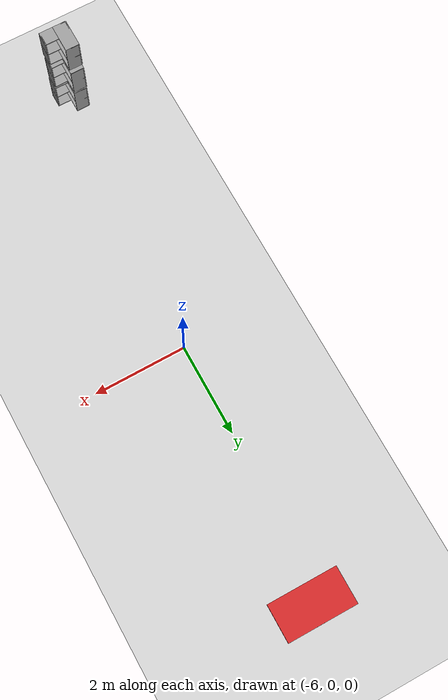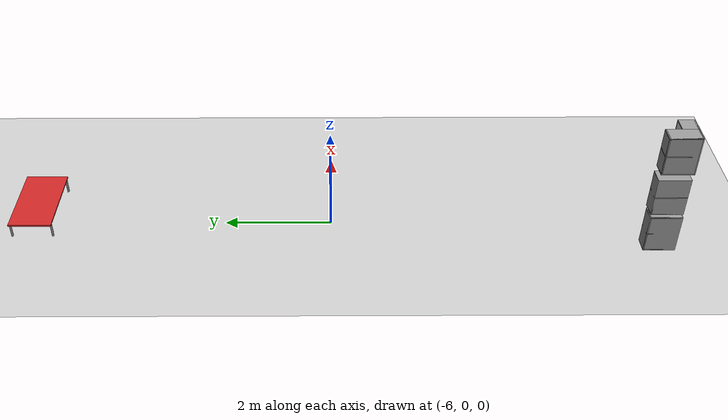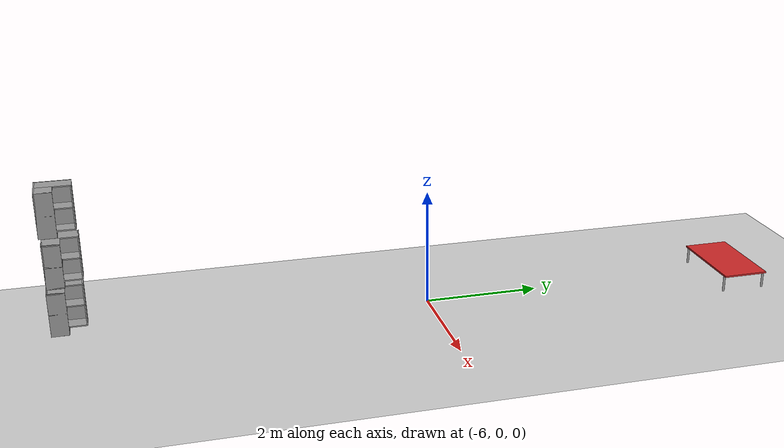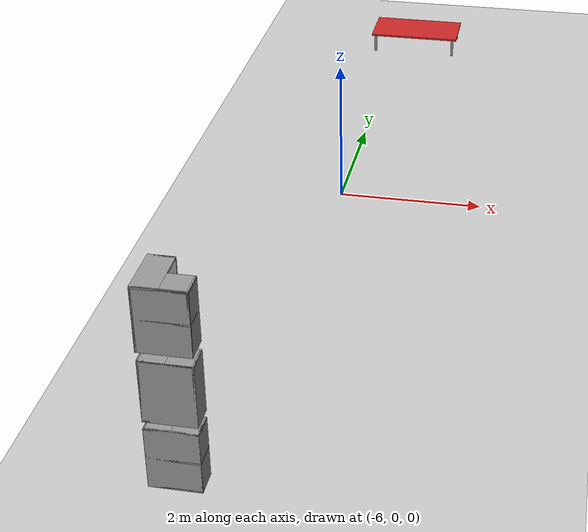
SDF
<sdf version="1.6">
 <world name="Own Room">
  <model name="ground_plane">
   <static>1</static>
   <link name="link">
    <collision name="collision">
     <geometry><plane><normal>0 0 1</normal><size>100 100</size></plane></geometry>
     <surface>
      <contact><collide_bitmask>65535</collide_bitmask></contact>
      <friction><ode><mu>100</mu><mu2>50</mu2></ode></friction>
     </surface>
    </collision>
    <visual name="visual">
     <cast_shadows>0</cast_shadows>
     <geometry><plane><normal>0 0 1</normal><size>100 100</size></plane></geometry>
     <material>
      <script><uri>file://media/materials/scripts/gazebo.material</uri><name>Gazebo/Grey</name></script>
     </material>
    </visual>
   </link>
  </model>
  <model name="table">
   <link name="link">
    <inertial>
     <mass>1</mass>
     <inertia><ixx>1</ixx><ixy>0</ixy><ixz>0</ixz><iyy>1</iyy><iyz>0</iyz><izz>1</izz></inertia>
    </inertial>
    <visual name="front_right_leg">
     <pose>0.68 -0.38 0.15 0 -0 0</pose>
     <geometry><cylinder><radius>0.02</radius><length>0.3</length></cylinder></geometry>
     <material>
      <script><uri>file://media/materials/scripts/gazebo.material</uri><name>Gazebo/Grey</name></script>
      <shader type="pixel"><normal_map>__default__</normal_map></shader>
      <ambient>0.3 0.3 0.3 1</ambient>
      <diffuse>0.7 0.7 0.7 1</diffuse>
      <specular>0.01 0.01 0.01 1</specular>
      <emissive>0 0 0 1</emissive>
     </material>
    </visual>
    <visual name="back_left_leg">
     <pose>-0.68 0.38 0.15 0 -0 0</pose>
     <geometry><cylinder><radius>0.02</radius><length>0.3</length></cylinder></geometry>
     <material>
      <script><uri>file://media/materials/scripts/gazebo.material</uri><name>Gazebo/Grey</name></script>
      <shader type="pixel"><normal_map>__default__</normal_map></shader>
      <ambient>0.3 0.3 0.3 1</ambient>
      <diffuse>0.7 0.7 0.7 1</diffuse>
      <specular>0.01 0.01 0.01 1</specular>
      <emissive>0 0 0 1</emissive>
     </material>
    </visual>
    <visual name="front_left_leg">
     <pose>0.68 0.38 0.15 0 -0 0</pose>
     <geometry><cylinder><radius>0.02</radius><length>0.3</length></cylinder></geometry>
     <material>
      <script><uri>file://media/materials/scripts/gazebo.material</uri><name>Gazebo/Grey</name></script>
      <shader type="pixel"><normal_map>__default__</normal_map></shader>
      <ambient>0.3 0.3 0.3 1</ambient>
      <diffuse>0.7 0.7 0.7 1</diffuse>
      <specular>0.01 0.01 0.01 1</specular>
      <emissive>0 0 0 1</emissive>
     </material>
    </visual>
    <visual name="visual1">
     <pose>0 0 0.3 0 -0 0</pose>
     <geometry><box><size>1.5 0.8 0.03</size></box></geometry>
     <material>
      <script><uri>file://media/materials/scripts/gazebo.material</uri><name>Gazebo/Red</name></script>
      <shader type="vertex"><normal_map>__default__</normal_map></shader>
      <ambient>1 0 0 1</ambient>
      <diffuse>1 0 0 1</diffuse>
      <specular>0.2 0 0 1</specular>
      <emissive>0 0 0 1</emissive>
      <lighting>1</lighting>
     </material>
    </visual>
    <visual name="back_right_leg">
     <pose>-0.68 -0.38 0.15 0 -0 0</pose>
     <geometry><cylinder><radius>0.02</radius><length>0.3</length></cylinder></geometry>
     <material>
      <script><uri>file://media/materials/scripts/gazebo.material</uri><name>Gazebo/Grey</name></script>
      <shader type="pixel"><normal_map>__default__</normal_map></shader>
      <ambient>0.3 0.3 0.3 1</ambient>
      <diffuse>0.7 0.7 0.7 1</diffuse>
      <specular>0.01 0.01 0.01 1</specular>
      <emissive>0 0 0 1</emissive>
     </material>
    </visual>
    <collision name="front_left_leg">
     <pose>0.68 0.38 0.15 0 -0 0</pose>
     <geometry><cylinder><radius>0.02</radius><length>0.3</length></cylinder></geometry>
     <surface>
      <friction>
       <ode><mu>1</mu><mu2>1</mu2><fdir1>0 0 0</fdir1><slip1>0</slip1><slip2>0</slip2></ode>
       <torsional>
        <coefficient>1</coefficient>
        <patch_radius>0</patch_radius>
        <surface_radius>0</surface_radius>
        <use_patch_radius>1</use_patch_radius>
        <ode><slip>0</slip></ode>
       </torsional>
      </friction>
      <bounce><restitution_coefficient>0</restitution_coefficient><threshold>1e+06</threshold></bounce>
      <contact>
       <collide_without_contact>0</collide_without_contact>
       <collide_without_contact_bitmask>1</collide_without_contact_bitmask>
       <collide_bitmask>1</collide_bitmask>
       <ode>
        <soft_cfm>0</soft_cfm>
        <soft_erp>0.2</soft_erp>
        <kp>1e+13</kp>
        <kd>1</kd>
        <max_vel>0.01</max_vel>
        <min_depth>0</min_depth>
       </ode>
       <bullet>
        <split_impulse>1</split_impulse>
        <split_impulse_penetration_threshold>-0.01</split_impulse_penetration_threshold>
        <soft_cfm>0</soft_cfm>
        <soft_erp>0.2</soft_erp>
        <kp>1e+13</kp>
        <kd>1</kd>
       </bullet>
      </contact>
     </surface>
    </collision>
    <collision name="back_right_leg">
     <pose>-0.68 -0.38 0.15 0 -0 0</pose>
     <geometry><cylinder><radius>0.02</radius><length>0.3</length></cylinder></geometry>
     <surface>
      <friction>
       <ode><mu>1</mu><mu2>1</mu2><fdir1>0 0 0</fdir1><slip1>0</slip1><slip2>0</slip2></ode>
       <torsional>
        <coefficient>1</coefficient>
        <patch_radius>0</patch_radius>
        <surface_radius>0</surface_radius>
        <use_patch_radius>1</use_patch_radius>
        <ode><slip>0</slip></ode>
       </torsional>
      </friction>
      <bounce><restitution_coefficient>0</restitution_coefficient><threshold>1e+06</threshold></bounce>
      <contact>
       <collide_without_contact>0</collide_without_contact>
       <collide_without_contact_bitmask>1</collide_without_contact_bitmask>
       <collide_bitmask>1</collide_bitmask>
       <ode>
        <soft_cfm>0</soft_cfm>
        <soft_erp>0.2</soft_erp>
        <kp>1e+13</kp>
        <kd>1</kd>
        <max_vel>0.01</max_vel>
        <min_depth>0</min_depth>
       </ode>
       <bullet>
        <split_impulse>1</split_impulse>
        <split_impulse_penetration_threshold>-0.01</split_impulse_penetration_threshold>
        <soft_cfm>0</soft_cfm>
        <soft_erp>0.2</soft_erp>
        <kp>1e+13</kp>
        <kd>1</kd>
       </bullet>
      </contact>
     </surface>
    </collision>
    <collision name="back_left_leg">
     <pose>-0.68 0.38 0.15 0 -0 0</pose>
     <geometry><cylinder><radius>0.02</radius><length>0.3</length></cylinder></geometry>
     <surface>
      <friction>
       <ode><mu>1</mu><mu2>1</mu2><fdir1>0 0 0</fdir1><slip1>0</slip1><slip2>0</slip2></ode>
       <torsional>
        <coefficient>1</coefficient>
        <patch_radius>0</patch_radius>
        <surface_radius>0</surface_radius>
        <use_patch_radius>1</use_patch_radius>
        <ode><slip>0</slip></ode>
       </torsional>
      </friction>
      <bounce><restitution_coefficient>0</restitution_coefficient><threshold>1e+06</threshold></bounce>
      <contact>
       <collide_without_contact>0</collide_without_contact>
       <collide_without_contact_bitmask>1</collide_without_contact_bitmask>
       <collide_bitmask>1</collide_bitmask>
       <ode>
        <soft_cfm>0</soft_cfm>
        <soft_erp>0.2</soft_erp>
        <kp>1e+13</kp>
        <kd>1</kd>
        <max_vel>0.01</max_vel>
        <min_depth>0</min_depth>
       </ode>
       <bullet>
        <split_impulse>1</split_impulse>
        <split_impulse_penetration_threshold>-0.01</split_impulse_penetration_threshold>
        <soft_cfm>0</soft_cfm>
        <soft_erp>0.2</soft_erp>
        <kp>1e+13</kp>
        <kd>1</kd>
       </bullet>
      </contact>
     </surface>
    </collision>
    <collision name="surface">
     <pose>0 0 0.3 0 -0 0</pose>
     <geometry><box><size>1.5 0.8 0.03</size></box></geometry>
     <surface>
      <friction>
       <ode><mu>0.6</mu><mu2>0.6</mu2><fdir1>0 0 0</fdir1><slip1>0</slip1><slip2>0</slip2></ode>
       <torsional>
        <coefficient>1</coefficient>
        <patch_radius>0</patch_radius>
        <surface_radius>0</surface_radius>
        <use_patch_radius>1</use_patch_radius>
        <ode><slip>0</slip></ode>
       </torsional>
      </friction>
      <bounce><restitution_coefficient>0</restitution_coefficient><threshold>1e+06</threshold></bounce>
      <contact>
       <collide_without_contact>0</collide_without_contact>
       <collide_without_contact_bitmask>1</collide_without_contact_bitmask>
       <collide_bitmask>1</collide_bitmask>
       <ode>
        <soft_cfm>0</soft_cfm>
        <soft_erp>0.2</soft_erp>
        <kp>1e+13</kp>
        <kd>1</kd>
        <max_vel>0.01</max_vel>
        <min_depth>0</min_depth>
       </ode>
       <bullet>
        <split_impulse>1</split_impulse>
        <split_impulse_penetration_threshold>-0.01</split_impulse_penetration_threshold>
        <soft_cfm>0</soft_cfm>
        <soft_erp>0.2</soft_erp>
        <kp>1e+13</kp>
        <kd>1</kd>
       </bullet>
      </contact>
     </surface>
    </collision>
    <collision name="front_right_leg">
     <pose>0.68 -0.38 0.15 0 -0 0</pose>
     <geometry><cylinder><radius>0.02</radius><length>0.3</length></cylinder></geometry>
     <surface>
      <friction>
       <ode><mu>1</mu><mu2>1</mu2><fdir1>0 0 0</fdir1><slip1>0</slip1><slip2>0</slip2></ode>
       <torsional>
        <coefficient>1</coefficient>
        <patch_radius>0</patch_radius>
        <surface_radius>0</surface_radius>
        <use_patch_radius>1</use_patch_radius>
        <ode><slip>0</slip></ode>
       </torsional>
      </friction>
      <bounce><restitution_coefficient>0</restitution_coefficient><threshold>1e+06</threshold></bounce>
      <contact>
       <collide_without_contact>0</collide_without_contact>
       <collide_without_contact_bitmask>1</collide_without_contact_bitmask>
       <collide_bitmask>1</collide_bitmask>
       <ode>
        <soft_cfm>0</soft_cfm>
        <soft_erp>0.2</soft_erp>
        <kp>1e+13</kp>
        <kd>1</kd>
        <max_vel>0.01</max_vel>
        <min_depth>0</min_depth>
       </ode>
       <bullet>
        <split_impulse>1</split_impulse>
        <split_impulse_penetration_threshold>-0.01</split_impulse_penetration_threshold>
        <soft_cfm>0</soft_cfm>
        <soft_erp>0.2</soft_erp>
        <kp>1e+13</kp>
        <kd>1</kd>
       </bullet>
      </contact>
     </surface>
    </collision>
   </link>
   <static>1</static>
   <pose>-5.68589 5.59801 0 0 -0 0</pose>
  </model>
  <model name="Wall_Cabinet_Coin_24x30W">
   <link name="Wall_10">
    <pose>0.286 -0.148 0.384 0 -0 0</pose>
    <inertial>
     <mass>2.1259</mass>
     <inertia><ixx>0.0158</ixx><iyy>0.1202</iyy><izz>0.1046</izz><ixy>0</ixy><ixz>0</ixz><iyz>0</iyz></inertia>
    </inertial>
    <collision name="Wall_10_Collision"><geometry><box><size>0.02 0.296 0.768</size></box></geometry></collision>
    <visual name="Wall_10_Visual">
     <geometry><box><size>0.02 0.296 0.768</size></box></geometry>
     <material>
      <script><uri>file://media/materials/scripts/gazebo.material</uri><name>Gazebo/Grey</name></script>
      <ambient>1 1 1 1</ambient>
     </material>
    </visual>
   </link>
   <joint name="10_16" type="fixed">
    <pose>0 0 -0.374 0 -0 0</pose>
    <parent>Wall_16</parent>
    <child>Wall_10</child>
    <axis>
     <xyz>1 0 0</xyz>
     <use_parent_model_frame>0</use_parent_model_frame>
     <limit><lower>-1e+16</lower><upper>1e+16</upper></limit>
    </axis>
   </joint>
   <joint name="10_14" type="fixed">
    <parent>Wall_14</parent>
    <child>Wall_10</child>
    <axis>
     <xyz>1 0 0</xyz>
     <use_parent_model_frame>0</use_parent_model_frame>
     <limit><lower>-1e+16</lower><upper>1e+16</upper></limit>
    </axis>
   </joint>
   <joint name="10_12" type="fixed">
    <pose>0 0 0.374 0 -0 0</pose>
    <parent>Wall_12</parent>
    <child>Wall_10</child>
    <axis>
     <xyz>1 0 0</xyz>
     <use_parent_model_frame>0</use_parent_model_frame>
     <limit><lower>-1e+16</lower><upper>1e+16</upper></limit>
    </axis>
   </joint>
   <joint name="10_29" type="fixed">
    <pose>0 -0.148 0 0 -0 0</pose>
    <parent>Wall_29</parent>
    <child>Wall_10</child>
    <axis>
     <xyz>1 0 0</xyz>
     <use_parent_model_frame>0</use_parent_model_frame>
     <limit><lower>-1e+16</lower><upper>1e+16</upper></limit>
    </axis>
   </joint>
   <link name="Wall_12">
    <pose>0.148 -0.148 0.758 0 -0 0</pose>
    <inertial>
     <mass>0.8802</mass>
     <inertia><ixx>0.0065</ixx><iyy>0.0139</iyy><izz>0.0074</izz><ixy>0</ixy><ixz>0</ixz><iyz>0</iyz></inertia>
    </inertial>
    <collision name="Wall_12_Collision"><geometry><box><size>0.296 0.296 0.02</size></box></geometry></collision>
    <visual name="Wall_12_Visual">
     <geometry><box><size>0.296 0.296 0.02</size></box></geometry>
     <material>
      <script><uri>file://media/materials/scripts/gazebo.material</uri><name>Gazebo/Grey</name></script>
      <ambient>1 1 1 1</ambient>
     </material>
    </visual>
   </link>
   <joint name="12_29" type="fixed">
    <pose>0 -0.148 0 0 -0 0</pose>
    <parent>Wall_29</parent>
    <child>Wall_12</child>
    <axis>
     <xyz>0 0 1</xyz>
     <use_parent_model_frame>0</use_parent_model_frame>
     <limit><lower>-1e+16</lower><upper>1e+16</upper></limit>
    </axis>
   </joint>
   <link name="Wall_14">
    <pose>0.148 -0.148 0.384 0 -0 0</pose>
    <inertial>
     <mass>0.8802</mass>
     <inertia><ixx>0.0065</ixx><iyy>0.0139</iyy><izz>0.0074</izz><ixy>0</ixy><ixz>0</ixz><iyz>0</iyz></inertia>
    </inertial>
    <collision name="Wall_14_Collision"><geometry><box><size>0.296 0.296 0.02</size></box></geometry></collision>
    <visual name="Wall_14_Visual">
     <geometry><box><size>0.296 0.296 0.02</size></box></geometry>
     <material>
      <script><uri>file://media/materials/scripts/gazebo.material</uri><name>Gazebo/Grey</name></script>
      <ambient>1 1 1 1</ambient>
     </material>
    </visual>
   </link>
   <joint name="14_29" type="fixed">
    <pose>0 -0.148 0 0 -0 0</pose>
    <parent>Wall_29</parent>
    <child>Wall_14</child>
    <axis>
     <xyz>0 1 0</xyz>
     <use_parent_model_frame>0</use_parent_model_frame>
     <limit><lower>-1e+16</lower><upper>1e+16</upper></limit>
    </axis>
   </joint>
   <link name="Wall_16">
    <pose>0.148 -0.148 0.01 0 -0 0</pose>
    <inertial>
     <mass>0.8802</mass>
     <inertia><ixx>0.0065</ixx><iyy>0.0139</iyy><izz>0.0074</izz><ixy>0</ixy><ixz>0</ixz><iyz>0</iyz></inertia>
    </inertial>
    <collision name="Wall_16_Collision"><geometry><box><size>0.296 0.296 0.02</size></box></geometry></collision>
    <visual name="Wall_16_Visual">
     <geometry><box><size>0.296 0.296 0.02</size></box></geometry>
     <material>
      <script><uri>file://media/materials/scripts/gazebo.material</uri><name>Gazebo/Grey</name></script>
      <ambient>1 1 1 1</ambient>
     </material>
    </visual>
   </link>
   <joint name="16_29" type="fixed">
    <pose>0 -0.148 0 0 -0 0</pose>
    <parent>Wall_29</parent>
    <child>Wall_16</child>
    <axis>
     <xyz>0 1 0</xyz>
     <use_parent_model_frame>0</use_parent_model_frame>
     <limit><lower>-1e+16</lower><upper>1e+16</upper></limit>
    </axis>
   </joint>
   <link name="Wall_18">
    <pose>-0.148 0 0.01 0 -0 0</pose>
    <inertial>
     <mass>1.6525</mass>
     <inertia><ixx>0.0491</ixx><iyy>0.0613</iyy><izz>0.0123</izz><ixy>0</ixy><ixz>0</ixz><iyz>0</iyz></inertia>
    </inertial>
    <collision name="Wall_18_Collision"><geometry><box><size>0.296 0.592 0.02</size></box></geometry></collision>
    <visual name="Wall_18_Visual">
     <geometry><box><size>0.296 0.592 0.02</size></box></geometry>
     <material>
      <script><uri>file://media/materials/scripts/gazebo.material</uri><name>Gazebo/Grey</name></script>
      <ambient>1 1 1 1</ambient>
     </material>
    </visual>
   </link>
   <joint name="18_16" type="fixed">
    <pose>0.148 -0.148 0 0 -0 0</pose>
    <parent>Wall_16</parent>
    <child>Wall_18</child>
    <axis>
     <xyz>1 0 0</xyz>
     <use_parent_model_frame>0</use_parent_model_frame>
     <limit><lower>-1e+16</lower><upper>1e+16</upper></limit>
    </axis>
   </joint>
   <joint name="18_29" type="fixed">
    <pose>0 -0.296 0 0 -0 0</pose>
    <parent>Wall_29</parent>
    <child>Wall_18</child>
    <axis>
     <xyz>0 1 0</xyz>
     <use_parent_model_frame>0</use_parent_model_frame>
     <limit><lower>-1e+16</lower><upper>1e+16</upper></limit>
    </axis>
   </joint>
   <joint name="18_27" type="fixed">
    <pose>-0.148 0 0 0 -0 0</pose>
    <parent>Wall_27</parent>
    <child>Wall_18</child>
    <axis>
     <xyz>1 0 0</xyz>
     <use_parent_model_frame>0</use_parent_model_frame>
     <limit><lower>-1e+16</lower><upper>1e+16</upper></limit>
    </axis>
   </joint>
   <joint name="18_30" type="fixed">
    <pose>0 0.296 0 0 -0 0</pose>
    <parent>Wall_30</parent>
    <child>Wall_18</child>
    <axis>
     <xyz>0 1 0</xyz>
     <use_parent_model_frame>0</use_parent_model_frame>
     <limit><lower>-1e+16</lower><upper>1e+16</upper></limit>
    </axis>
   </joint>
   <link name="Wall_20">
    <pose>-0.148 0 0.384 0 -0 0</pose>
    <inertial>
     <mass>1.6525</mass>
     <inertia><ixx>0.0491</ixx><iyy>0.0613</iyy><izz>0.0123</izz><ixy>0</ixy><ixz>0</ixz><iyz>0</iyz></inertia>
    </inertial>
    <collision name="Wall_20_Collision"><geometry><box><size>0.296 0.592 0.02</size></box></geometry></collision>
    <visual name="Wall_20_Visual">
     <geometry><box><size>0.296 0.592 0.02</size></box></geometry>
     <material>
      <script><uri>file://media/materials/scripts/gazebo.material</uri><name>Gazebo/Grey</name></script>
      <ambient>1 1 1 1</ambient>
     </material>
    </visual>
   </link>
   <joint name="20_14" type="fixed">
    <pose>0.148 -0.148 0 0 -0 0</pose>
    <parent>Wall_14</parent>
    <child>Wall_20</child>
    <axis>
     <xyz>1 0 0</xyz>
     <use_parent_model_frame>0</use_parent_model_frame>
     <limit><lower>-1e+16</lower><upper>1e+16</upper></limit>
    </axis>
   </joint>
   <joint name="20_29" type="fixed">
    <pose>0 -0.296 0 0 -0 0</pose>
    <parent>Wall_29</parent>
    <child>Wall_20</child>
    <axis>
     <xyz>0 1 0</xyz>
     <use_parent_model_frame>0</use_parent_model_frame>
     <limit><lower>-1e+16</lower><upper>1e+16</upper></limit>
    </axis>
   </joint>
   <joint name="20_27" type="fixed">
    <pose>-0.148 0 0 0 -0 0</pose>
    <parent>Wall_27</parent>
    <child>Wall_20</child>
    <axis>
     <xyz>1 0 0</xyz>
     <use_parent_model_frame>0</use_parent_model_frame>
     <limit><lower>-1e+16</lower><upper>1e+16</upper></limit>
    </axis>
   </joint>
   <joint name="20_30" type="fixed">
    <pose>0 0.296 0 0 -0 0</pose>
    <parent>Wall_30</parent>
    <child>Wall_20</child>
    <axis>
     <xyz>0 1 0</xyz>
     <use_parent_model_frame>0</use_parent_model_frame>
     <limit><lower>-1e+16</lower><upper>1e+16</upper></limit>
    </axis>
   </joint>
   <link name="Wall_22">
    <pose>-0.148 0 0.758 0 -0 0</pose>
    <inertial>
     <mass>1.6525</mass>
     <inertia><ixx>0.0491</ixx><iyy>0.0613</iyy><izz>0.0123</izz><ixy>0</ixy><ixz>0</ixz><iyz>0</iyz></inertia>
    </inertial>
    <collision name="Wall_22_Collision"><geometry><box><size>0.296 0.592 0.02</size></box></geometry></collision>
    <visual name="Wall_22_Visual">
     <geometry><box><size>0.296 0.592 0.02</size></box></geometry>
     <material>
      <script><uri>file://media/materials/scripts/gazebo.material</uri><name>Gazebo/Grey</name></script>
      <ambient>1 1 1 1</ambient>
     </material>
    </visual>
   </link>
   <joint name="22_12" type="fixed">
    <pose>0.148 -0.148 0 0 -0 0</pose>
    <parent>Wall_12</parent>
    <child>Wall_22</child>
    <axis>
     <xyz>1 0 0</xyz>
     <use_parent_model_frame>0</use_parent_model_frame>
     <limit><lower>-1e+16</lower><upper>1e+16</upper></limit>
    </axis>
   </joint>
   <joint name="22_29" type="fixed">
    <pose>0 -0.296 0 0 -0 0</pose>
    <parent>Wall_29</parent>
    <child>Wall_22</child>
    <axis>
     <xyz>0 1 0</xyz>
     <use_parent_model_frame>0</use_parent_model_frame>
     <limit><lower>-1e+16</lower><upper>1e+16</upper></limit>
    </axis>
   </joint>
   <joint name="22_27" type="fixed">
    <pose>-0.148 0 0 0 -0 0</pose>
    <parent>Wall_27</parent>
    <child>Wall_22</child>
    <axis>
     <xyz>1 0 0</xyz>
     <use_parent_model_frame>0</use_parent_model_frame>
     <limit><lower>-1e+16</lower><upper>1e+16</upper></limit>
    </axis>
   </joint>
   <joint name="22_30" type="fixed">
    <pose>0 0.296 0 0 -0 0</pose>
    <parent>Wall_30</parent>
    <child>Wall_22</child>
    <axis>
     <xyz>0 1 0</xyz>
     <use_parent_model_frame>0</use_parent_model_frame>
     <limit><lower>-1e+16</lower><upper>1e+16</upper></limit>
    </axis>
   </joint>
   <link name="Wall_27">
    <pose>-0.286 0 0.384 0 -0 0</pose>
    <inertial>
     <mass>4.2589</mass>
     <inertia><ixx>0.1266</ixx><iyy>0.3358</iyy><izz>0.2095</izz><ixy>0</ixy><ixz>0</ixz><iyz>0</iyz></inertia>
    </inertial>
    <collision name="Wall_27_Collision"><geometry><box><size>0.02 0.592 0.768</size></box></geometry></collision>
    <visual name="Wall_27_Visual">
     <geometry><box><size>0.02 0.592 0.768</size></box></geometry>
     <material>
      <script><uri>file://media/materials/scripts/gazebo.material</uri><name>Gazebo/Grey</name></script>
      <ambient>1 1 1 1</ambient>
     </material>
    </visual>
   </link>
   <joint name="27_30" type="fixed">
    <pose>0 0.296 0 0 -0 0</pose>
    <parent>Wall_30</parent>
    <child>Wall_27</child>
    <axis>
     <xyz>0 1 0</xyz>
     <use_parent_model_frame>0</use_parent_model_frame>
     <limit><lower>-1e+16</lower><upper>1e+16</upper></limit>
    </axis>
   </joint>
   <link name="Wall_29">
    <pose>0 -0.286 0.384 0 -0 0</pose>
    <inertial>
     <mass>4.3176</mass>
     <inertia><ixx>0.134</ixx><iyy>0.2091</iyy><izz>0.3428</izz><ixy>0</ixy><ixz>0</ixz><iyz>0</iyz></inertia>
    </inertial>
    <collision name="Wall_29_Collision"><geometry><box><size>0.592 0.02 0.768</size></box></geometry></collision>
    <visual name="Wall_29_Visual">
     <geometry><box><size>0.592 0.02 0.768</size></box></geometry>
     <material>
      <script><uri>file://media/materials/scripts/gazebo.material</uri><name>Gazebo/Grey</name></script>
      <ambient>1 1 1 1</ambient>
     </material>
    </visual>
   </link>
   <link name="Wall_30">
    <pose>-0.148 0.286 0.384 0 -0 0</pose>
    <inertial>
     <mass>2.1093</mass>
     <inertia><ixx>0.1021</ixx><iyy>0.0157</iyy><izz>0.1177</izz><ixy>0</ixy><ixz>0</ixz><iyz>0</iyz></inertia>
    </inertial>
    <collision name="Wall_30_Collision"><geometry><box><size>0.296 0.02 0.768</size></box></geometry></collision>
    <visual name="Wall_30_Visual">
     <geometry><box><size>0.296 0.02 0.768</size></box></geometry>
     <material>
      <script><uri>file://media/materials/scripts/gazebo.material</uri><name>Gazebo/Grey</name></script>
      <ambient>1 1 1 1</ambient>
     </material>
    </visual>
   </link>
   <static>1</static>
   <pose>-6.53831 -6.05255 0 0 -0 0</pose>
  </model>
  <model name="Wall_Cabinet_Coin_24x30W_clone">
   <link name="Wall_10">
    <pose>0.286 -0.148 0.384 0 -0 0</pose>
    <inertial>
     <mass>2.1259</mass>
     <inertia><ixx>0.0158</ixx><iyy>0.1202</iyy><izz>0.1046</izz><ixy>0</ixy><ixz>0</ixz><iyz>0</iyz></inertia>
    </inertial>
    <collision name="Wall_10_Collision"><geometry><box><size>0.02 0.296 0.768</size></box></geometry></collision>
    <visual name="Wall_10_Visual">
     <geometry><box><size>0.02 0.296 0.768</size></box></geometry>
     <material>
      <script><uri>file://media/materials/scripts/gazebo.material</uri><name>Gazebo/Grey</name></script>
      <ambient>1 1 1 1</ambient>
     </material>
    </visual>
   </link>
   <joint name="10_16" type="fixed">
    <pose>0 0 -0.374 0 -0 0</pose>
    <parent>Wall_16</parent>
    <child>Wall_10</child>
    <axis>
     <xyz>1 0 0</xyz>
     <use_parent_model_frame>0</use_parent_model_frame>
     <limit><lower>-1e+16</lower><upper>1e+16</upper></limit>
    </axis>
   </joint>
   <joint name="10_14" type="fixed">
    <parent>Wall_14</parent>
    <child>Wall_10</child>
    <axis>
     <xyz>1 0 0</xyz>
     <use_parent_model_frame>0</use_parent_model_frame>
     <limit><lower>-1e+16</lower><upper>1e+16</upper></limit>
    </axis>
   </joint>
   <joint name="10_12" type="fixed">
    <pose>0 0 0.374 0 -0 0</pose>
    <parent>Wall_12</parent>
    <child>Wall_10</child>
    <axis>
     <xyz>1 0 0</xyz>
     <use_parent_model_frame>0</use_parent_model_frame>
     <limit><lower>-1e+16</lower><upper>1e+16</upper></limit>
    </axis>
   </joint>
   <joint name="10_29" type="fixed">
    <pose>0 -0.148 0 0 -0 0</pose>
    <parent>Wall_29</parent>
    <child>Wall_10</child>
    <axis>
     <xyz>1 0 0</xyz>
     <use_parent_model_frame>0</use_parent_model_frame>
     <limit><lower>-1e+16</lower><upper>1e+16</upper></limit>
    </axis>
   </joint>
   <link name="Wall_12">
    <pose>0.148 -0.148 0.758 0 -0 0</pose>
    <inertial>
     <mass>0.8802</mass>
     <inertia><ixx>0.0065</ixx><iyy>0.0139</iyy><izz>0.0074</izz><ixy>0</ixy><ixz>0</ixz><iyz>0</iyz></inertia>
    </inertial>
    <collision name="Wall_12_Collision"><geometry><box><size>0.296 0.296 0.02</size></box></geometry></collision>
    <visual name="Wall_12_Visual">
     <geometry><box><size>0.296 0.296 0.02</size></box></geometry>
     <material>
      <script><uri>file://media/materials/scripts/gazebo.material</uri><name>Gazebo/Grey</name></script>
      <ambient>1 1 1 1</ambient>
     </material>
    </visual>
   </link>
   <joint name="12_29" type="fixed">
    <pose>0 -0.148 0 0 -0 0</pose>
    <parent>Wall_29</parent>
    <child>Wall_12</child>
    <axis>
     <xyz>0 0 1</xyz>
     <use_parent_model_frame>0</use_parent_model_frame>
     <limit><lower>-1e+16</lower><upper>1e+16</upper></limit>
    </axis>
   </joint>
   <link name="Wall_14">
    <pose>0.148 -0.148 0.384 0 -0 0</pose>
    <inertial>
     <mass>0.8802</mass>
     <inertia><ixx>0.0065</ixx><iyy>0.0139</iyy><izz>0.0074</izz><ixy>0</ixy><ixz>0</ixz><iyz>0</iyz></inertia>
    </inertial>
    <collision name="Wall_14_Collision"><geometry><box><size>0.296 0.296 0.02</size></box></geometry></collision>
    <visual name="Wall_14_Visual">
     <geometry><box><size>0.296 0.296 0.02</size></box></geometry>
     <material>
      <script><uri>file://media/materials/scripts/gazebo.material</uri><name>Gazebo/Grey</name></script>
      <ambient>1 1 1 1</ambient>
     </material>
    </visual>
   </link>
   <joint name="14_29" type="fixed">
    <pose>0 -0.148 0 0 -0 0</pose>
    <parent>Wall_29</parent>
    <child>Wall_14</child>
    <axis>
     <xyz>0 1 0</xyz>
     <use_parent_model_frame>0</use_parent_model_frame>
     <limit><lower>-1e+16</lower><upper>1e+16</upper></limit>
    </axis>
   </joint>
   <link name="Wall_16">
    <pose>0.148 -0.148 0.01 0 -0 0</pose>
    <inertial>
     <mass>0.8802</mass>
     <inertia><ixx>0.0065</ixx><iyy>0.0139</iyy><izz>0.0074</izz><ixy>0</ixy><ixz>0</ixz><iyz>0</iyz></inertia>
    </inertial>
    <collision name="Wall_16_Collision"><geometry><box><size>0.296 0.296 0.02</size></box></geometry></collision>
    <visual name="Wall_16_Visual">
     <geometry><box><size>0.296 0.296 0.02</size></box></geometry>
     <material>
      <script><uri>file://media/materials/scripts/gazebo.material</uri><name>Gazebo/Grey</name></script>
      <ambient>1 1 1 1</ambient>
     </material>
    </visual>
   </link>
   <joint name="16_29" type="fixed">
    <pose>0 -0.148 0 0 -0 0</pose>
    <parent>Wall_29</parent>
    <child>Wall_16</child>
    <axis>
     <xyz>0 1 0</xyz>
     <use_parent_model_frame>0</use_parent_model_frame>
     <limit><lower>-1e+16</lower><upper>1e+16</upper></limit>
    </axis>
   </joint>
   <link name="Wall_18">
    <pose>-0.148 0 0.01 0 -0 0</pose>
    <inertial>
     <mass>1.6525</mass>
     <inertia><ixx>0.0491</ixx><iyy>0.0613</iyy><izz>0.0123</izz><ixy>0</ixy><ixz>0</ixz><iyz>0</iyz></inertia>
    </inertial>
    <collision name="Wall_18_Collision"><geometry><box><size>0.296 0.592 0.02</size></box></geometry></collision>
    <visual name="Wall_18_Visual">
     <geometry><box><size>0.296 0.592 0.02</size></box></geometry>
     <material>
      <script><uri>file://media/materials/scripts/gazebo.material</uri><name>Gazebo/Grey</name></script>
      <ambient>1 1 1 1</ambient>
     </material>
    </visual>
   </link>
   <joint name="18_16" type="fixed">
    <pose>0.148 -0.148 0 0 -0 0</pose>
    <parent>Wall_16</parent>
    <child>Wall_18</child>
    <axis>
     <xyz>1 0 0</xyz>
     <use_parent_model_frame>0</use_parent_model_frame>
     <limit><lower>-1e+16</lower><upper>1e+16</upper></limit>
    </axis>
   </joint>
   <joint name="18_29" type="fixed">
    <pose>0 -0.296 0 0 -0 0</pose>
    <parent>Wall_29</parent>
    <child>Wall_18</child>
    <axis>
     <xyz>0 1 0</xyz>
     <use_parent_model_frame>0</use_parent_model_frame>
     <limit><lower>-1e+16</lower><upper>1e+16</upper></limit>
    </axis>
   </joint>
   <joint name="18_27" type="fixed">
    <pose>-0.148 0 0 0 -0 0</pose>
    <parent>Wall_27</parent>
    <child>Wall_18</child>
    <axis>
     <xyz>1 0 0</xyz>
     <use_parent_model_frame>0</use_parent_model_frame>
     <limit><lower>-1e+16</lower><upper>1e+16</upper></limit>
    </axis>
   </joint>
   <joint name="18_30" type="fixed">
    <pose>0 0.296 0 0 -0 0</pose>
    <parent>Wall_30</parent>
    <child>Wall_18</child>
    <axis>
     <xyz>0 1 0</xyz>
     <use_parent_model_frame>0</use_parent_model_frame>
     <limit><lower>-1e+16</lower><upper>1e+16</upper></limit>
    </axis>
   </joint>
   <link name="Wall_20">
    <pose>-0.148 0 0.384 0 -0 0</pose>
    <inertial>
     <mass>1.6525</mass>
     <inertia><ixx>0.0491</ixx><iyy>0.0613</iyy><izz>0.0123</izz><ixy>0</ixy><ixz>0</ixz><iyz>0</iyz></inertia>
    </inertial>
    <collision name="Wall_20_Collision"><geometry><box><size>0.296 0.592 0.02</size></box></geometry></collision>
    <visual name="Wall_20_Visual">
     <geometry><box><size>0.296 0.592 0.02</size></box></geometry>
     <material>
      <script><uri>file://media/materials/scripts/gazebo.material</uri><name>Gazebo/Grey</name></script>
      <ambient>1 1 1 1</ambient>
     </material>
    </visual>
   </link>
   <joint name="20_14" type="fixed">
    <pose>0.148 -0.148 0 0 -0 0</pose>
    <parent>Wall_14</parent>
    <child>Wall_20</child>
    <axis>
     <xyz>1 0 0</xyz>
     <use_parent_model_frame>0</use_parent_model_frame>
     <limit><lower>-1e+16</lower><upper>1e+16</upper></limit>
    </axis>
   </joint>
   <joint name="20_29" type="fixed">
    <pose>0 -0.296 0 0 -0 0</pose>
    <parent>Wall_29</parent>
    <child>Wall_20</child>
    <axis>
     <xyz>0 1 0</xyz>
     <use_parent_model_frame>0</use_parent_model_frame>
     <limit><lower>-1e+16</lower><upper>1e+16</upper></limit>
    </axis>
   </joint>
   <joint name="20_27" type="fixed">
    <pose>-0.148 0 0 0 -0 0</pose>
    <parent>Wall_27</parent>
    <child>Wall_20</child>
    <axis>
     <xyz>1 0 0</xyz>
     <use_parent_model_frame>0</use_parent_model_frame>
     <limit><lower>-1e+16</lower><upper>1e+16</upper></limit>
    </axis>
   </joint>
   <joint name="20_30" type="fixed">
    <pose>0 0.296 0 0 -0 0</pose>
    <parent>Wall_30</parent>
    <child>Wall_20</child>
    <axis>
     <xyz>0 1 0</xyz>
     <use_parent_model_frame>0</use_parent_model_frame>
     <limit><lower>-1e+16</lower><upper>1e+16</upper></limit>
    </axis>
   </joint>
   <link name="Wall_22">
    <pose>-0.148 0 0.758 0 -0 0</pose>
    <inertial>
     <mass>1.6525</mass>
     <inertia><ixx>0.0491</ixx><iyy>0.0613</iyy><izz>0.0123</izz><ixy>0</ixy><ixz>0</ixz><iyz>0</iyz></inertia>
    </inertial>
    <collision name="Wall_22_Collision"><geometry><box><size>0.296 0.592 0.02</size></box></geometry></collision>
    <visual name="Wall_22_Visual">
     <geometry><box><size>0.296 0.592 0.02</size></box></geometry>
     <material>
      <script><uri>file://media/materials/scripts/gazebo.material</uri><name>Gazebo/Grey</name></script>
      <ambient>1 1 1 1</ambient>
     </material>
    </visual>
   </link>
   <joint name="22_12" type="fixed">
    <pose>0.148 -0.148 0 0 -0 0</pose>
    <parent>Wall_12</parent>
    <child>Wall_22</child>
    <axis>
     <xyz>1 0 0</xyz>
     <use_parent_model_frame>0</use_parent_model_frame>
     <limit><lower>-1e+16</lower><upper>1e+16</upper></limit>
    </axis>
   </joint>
   <joint name="22_29" type="fixed">
    <pose>0 -0.296 0 0 -0 0</pose>
    <parent>Wall_29</parent>
    <child>Wall_22</child>
    <axis>
     <xyz>0 1 0</xyz>
     <use_parent_model_frame>0</use_parent_model_frame>
     <limit><lower>-1e+16</lower><upper>1e+16</upper></limit>
    </axis>
   </joint>
   <joint name="22_27" type="fixed">
    <pose>-0.148 0 0 0 -0 0</pose>
    <parent>Wall_27</parent>
    <child>Wall_22</child>
    <axis>
     <xyz>1 0 0</xyz>
     <use_parent_model_frame>0</use_parent_model_frame>
     <limit><lower>-1e+16</lower><upper>1e+16</upper></limit>
    </axis>
   </joint>
   <joint name="22_30" type="fixed">
    <pose>0 0.296 0 0 -0 0</pose>
    <parent>Wall_30</parent>
    <child>Wall_22</child>
    <axis>
     <xyz>0 1 0</xyz>
     <use_parent_model_frame>0</use_parent_model_frame>
     <limit><lower>-1e+16</lower><upper>1e+16</upper></limit>
    </axis>
   </joint>
   <link name="Wall_27">
    <pose>-0.286 0 0.384 0 -0 0</pose>
    <inertial>
     <mass>4.2589</mass>
     <inertia><ixx>0.1266</ixx><iyy>0.3358</iyy><izz>0.2095</izz><ixy>0</ixy><ixz>0</ixz><iyz>0</iyz></inertia>
    </inertial>
    <collision name="Wall_27_Collision"><geometry><box><size>0.02 0.592 0.768</size></box></geometry></collision>
    <visual name="Wall_27_Visual">
     <geometry><box><size>0.02 0.592 0.768</size></box></geometry>
     <material>
      <script><uri>file://media/materials/scripts/gazebo.material</uri><name>Gazebo/Grey</name></script>
      <ambient>1 1 1 1</ambient>
     </material>
    </visual>
   </link>
   <joint name="27_30" type="fixed">
    <pose>0 0.296 0 0 -0 0</pose>
    <parent>Wall_30</parent>
    <child>Wall_27</child>
    <axis>
     <xyz>0 1 0</xyz>
     <use_parent_model_frame>0</use_parent_model_frame>
     <limit><lower>-1e+16</lower><upper>1e+16</upper></limit>
    </axis>
   </joint>
   <link name="Wall_29">
    <pose>0 -0.286 0.384 0 -0 0</pose>
    <inertial>
     <mass>4.3176</mass>
     <inertia><ixx>0.134</ixx><iyy>0.2091</iyy><izz>0.3428</izz><ixy>0</ixy><ixz>0</ixz><iyz>0</iyz></inertia>
    </inertial>
    <collision name="Wall_29_Collision"><geometry><box><size>0.592 0.02 0.768</size></box></geometry></collision>
    <visual name="Wall_29_Visual">
     <geometry><box><size>0.592 0.02 0.768</size></box></geometry>
     <material>
      <script><uri>file://media/materials/scripts/gazebo.material</uri><name>Gazebo/Grey</name></script>
      <ambient>1 1 1 1</ambient>
     </material>
    </visual>
   </link>
   <link name="Wall_30">
    <pose>-0.148 0.286 0.384 0 -0 0</pose>
    <inertial>
     <mass>2.1093</mass>
     <inertia><ixx>0.1021</ixx><iyy>0.0157</iyy><izz>0.1177</izz><ixy>0</ixy><ixz>0</ixz><iyz>0</iyz></inertia>
    </inertial>
    <collision name="Wall_30_Collision"><geometry><box><size>0.296 0.02 0.768</size></box></geometry></collision>
    <visual name="Wall_30_Visual">
     <geometry><box><size>0.296 0.02 0.768</size></box></geometry>
     <material>
      <script><uri>file://media/materials/scripts/gazebo.material</uri><name>Gazebo/Grey</name></script>
      <ambient>1 1 1 1</ambient>
     </material>
    </visual>
   </link>
   <static>1</static>
   <pose>-6.53802 -6.05387 1.72463 0 -0 0</pose>
  </model>
  <model name="Wall_Cabinet_Coin_24x30W_clone_1">
   <link name="Wall_10">
    <pose>0.286 -0.148 0.384 0 -0 0</pose>
    <inertial>
     <mass>2.1259</mass>
     <inertia><ixx>0.0158</ixx><iyy>0.1202</iyy><izz>0.1046</izz><ixy>0</ixy><ixz>0</ixz><iyz>0</iyz></inertia>
    </inertial>
    <collision name="Wall_10_Collision"><geometry><box><size>0.02 0.296 0.768</size></box></geometry></collision>
    <visual name="Wall_10_Visual">
     <geometry><box><size>0.02 0.296 0.768</size></box></geometry>
     <material>
      <script><uri>file://media/materials/scripts/gazebo.material</uri><name>Gazebo/Grey</name></script>
      <ambient>1 1 1 1</ambient>
     </material>
    </visual>
   </link>
   <joint name="10_16" type="fixed">
    <pose>0 0 -0.374 0 -0 0</pose>
    <parent>Wall_16</parent>
    <child>Wall_10</child>
    <axis>
     <xyz>1 0 0</xyz>
     <use_parent_model_frame>0</use_parent_model_frame>
     <limit><lower>-1e+16</lower><upper>1e+16</upper></limit>
    </axis>
   </joint>
   <joint name="10_14" type="fixed">
    <parent>Wall_14</parent>
    <child>Wall_10</child>
    <axis>
     <xyz>1 0 0</xyz>
     <use_parent_model_frame>0</use_parent_model_frame>
     <limit><lower>-1e+16</lower><upper>1e+16</upper></limit>
    </axis>
   </joint>
   <joint name="10_12" type="fixed">
    <pose>0 0 0.374 0 -0 0</pose>
    <parent>Wall_12</parent>
    <child>Wall_10</child>
    <axis>
     <xyz>1 0 0</xyz>
     <use_parent_model_frame>0</use_parent_model_frame>
     <limit><lower>-1e+16</lower><upper>1e+16</upper></limit>
    </axis>
   </joint>
   <joint name="10_29" type="fixed">
    <pose>0 -0.148 0 0 -0 0</pose>
    <parent>Wall_29</parent>
    <child>Wall_10</child>
    <axis>
     <xyz>1 0 0</xyz>
     <use_parent_model_frame>0</use_parent_model_frame>
     <limit><lower>-1e+16</lower><upper>1e+16</upper></limit>
    </axis>
   </joint>
   <link name="Wall_12">
    <pose>0.148 -0.148 0.758 0 -0 0</pose>
    <inertial>
     <mass>0.8802</mass>
     <inertia><ixx>0.0065</ixx><iyy>0.0139</iyy><izz>0.0074</izz><ixy>0</ixy><ixz>0</ixz><iyz>0</iyz></inertia>
    </inertial>
    <collision name="Wall_12_Collision"><geometry><box><size>0.296 0.296 0.02</size></box></geometry></collision>
    <visual name="Wall_12_Visual">
     <geometry><box><size>0.296 0.296 0.02</size></box></geometry>
     <material>
      <script><uri>file://media/materials/scripts/gazebo.material</uri><name>Gazebo/Grey</name></script>
      <ambient>1 1 1 1</ambient>
     </material>
    </visual>
   </link>
   <joint name="12_29" type="fixed">
    <pose>0 -0.148 0 0 -0 0</pose>
    <parent>Wall_29</parent>
    <child>Wall_12</child>
    <axis>
     <xyz>0 0 1</xyz>
     <use_parent_model_frame>0</use_parent_model_frame>
     <limit><lower>-1e+16</lower><upper>1e+16</upper></limit>
    </axis>
   </joint>
   <link name="Wall_14">
    <pose>0.148 -0.148 0.384 0 -0 0</pose>
    <inertial>
     <mass>0.8802</mass>
     <inertia><ixx>0.0065</ixx><iyy>0.0139</iyy><izz>0.0074</izz><ixy>0</ixy><ixz>0</ixz><iyz>0</iyz></inertia>
    </inertial>
    <collision name="Wall_14_Collision"><geometry><box><size>0.296 0.296 0.02</size></box></geometry></collision>
    <visual name="Wall_14_Visual">
     <geometry><box><size>0.296 0.296 0.02</size></box></geometry>
     <material>
      <script><uri>file://media/materials/scripts/gazebo.material</uri><name>Gazebo/Grey</name></script>
      <ambient>1 1 1 1</ambient>
     </material>
    </visual>
   </link>
   <joint name="14_29" type="fixed">
    <pose>0 -0.148 0 0 -0 0</pose>
    <parent>Wall_29</parent>
    <child>Wall_14</child>
    <axis>
     <xyz>0 1 0</xyz>
     <use_parent_model_frame>0</use_parent_model_frame>
     <limit><lower>-1e+16</lower><upper>1e+16</upper></limit>
    </axis>
   </joint>
   <link name="Wall_16">
    <pose>0.148 -0.148 0.01 0 -0 0</pose>
    <inertial>
     <mass>0.8802</mass>
     <inertia><ixx>0.0065</ixx><iyy>0.0139</iyy><izz>0.0074</izz><ixy>0</ixy><ixz>0</ixz><iyz>0</iyz></inertia>
    </inertial>
    <collision name="Wall_16_Collision"><geometry><box><size>0.296 0.296 0.02</size></box></geometry></collision>
    <visual name="Wall_16_Visual">
     <geometry><box><size>0.296 0.296 0.02</size></box></geometry>
     <material>
      <script><uri>file://media/materials/scripts/gazebo.material</uri><name>Gazebo/Grey</name></script>
      <ambient>1 1 1 1</ambient>
     </material>
    </visual>
   </link>
   <joint name="16_29" type="fixed">
    <pose>0 -0.148 0 0 -0 0</pose>
    <parent>Wall_29</parent>
    <child>Wall_16</child>
    <axis>
     <xyz>0 1 0</xyz>
     <use_parent_model_frame>0</use_parent_model_frame>
     <limit><lower>-1e+16</lower><upper>1e+16</upper></limit>
    </axis>
   </joint>
   <link name="Wall_18">
    <pose>-0.148 0 0.01 0 -0 0</pose>
    <inertial>
     <mass>1.6525</mass>
     <inertia><ixx>0.0491</ixx><iyy>0.0613</iyy><izz>0.0123</izz><ixy>0</ixy><ixz>0</ixz><iyz>0</iyz></inertia>
    </inertial>
    <collision name="Wall_18_Collision"><geometry><box><size>0.296 0.592 0.02</size></box></geometry></collision>
    <visual name="Wall_18_Visual">
     <geometry><box><size>0.296 0.592 0.02</size></box></geometry>
     <material>
      <script><uri>file://media/materials/scripts/gazebo.material</uri><name>Gazebo/Grey</name></script>
      <ambient>1 1 1 1</ambient>
     </material>
    </visual>
   </link>
   <joint name="18_16" type="fixed">
    <pose>0.148 -0.148 0 0 -0 0</pose>
    <parent>Wall_16</parent>
    <child>Wall_18</child>
    <axis>
     <xyz>1 0 0</xyz>
     <use_parent_model_frame>0</use_parent_model_frame>
     <limit><lower>-1e+16</lower><upper>1e+16</upper></limit>
    </axis>
   </joint>
   <joint name="18_29" type="fixed">
    <pose>0 -0.296 0 0 -0 0</pose>
    <parent>Wall_29</parent>
    <child>Wall_18</child>
    <axis>
     <xyz>0 1 0</xyz>
     <use_parent_model_frame>0</use_parent_model_frame>
     <limit><lower>-1e+16</lower><upper>1e+16</upper></limit>
    </axis>
   </joint>
   <joint name="18_27" type="fixed">
    <pose>-0.148 0 0 0 -0 0</pose>
    <parent>Wall_27</parent>
    <child>Wall_18</child>
    <axis>
     <xyz>1 0 0</xyz>
     <use_parent_model_frame>0</use_parent_model_frame>
     <limit><lower>-1e+16</lower><upper>1e+16</upper></limit>
    </axis>
   </joint>
   <joint name="18_30" type="fixed">
    <pose>0 0.296 0 0 -0 0</pose>
    <parent>Wall_30</parent>
    <child>Wall_18</child>
    <axis>
     <xyz>0 1 0</xyz>
     <use_parent_model_frame>0</use_parent_model_frame>
     <limit><lower>-1e+16</lower><upper>1e+16</upper></limit>
    </axis>
   </joint>
   <link name="Wall_20">
    <pose>-0.148 0 0.384 0 -0 0</pose>
    <inertial>
     <mass>1.6525</mass>
     <inertia><ixx>0.0491</ixx><iyy>0.0613</iyy><izz>0.0123</izz><ixy>0</ixy><ixz>0</ixz><iyz>0</iyz></inertia>
    </inertial>
    <collision name="Wall_20_Collision"><geometry><box><size>0.296 0.592 0.02</size></box></geometry></collision>
    <visual name="Wall_20_Visual">
     <geometry><box><size>0.296 0.592 0.02</size></box></geometry>
     <material>
      <script><uri>file://media/materials/scripts/gazebo.material</uri><name>Gazebo/Grey</name></script>
      <ambient>1 1 1 1</ambient>
     </material>
    </visual>
   </link>
   <joint name="20_14" type="fixed">
    <pose>0.148 -0.148 0 0 -0 0</pose>
    <parent>Wall_14</parent>
    <child>Wall_20</child>
    <axis>
     <xyz>1 0 0</xyz>
     <use_parent_model_frame>0</use_parent_model_frame>
     <limit><lower>-1e+16</lower><upper>1e+16</upper></limit>
    </axis>
   </joint>
   <joint name="20_29" type="fixed">
    <pose>0 -0.296 0 0 -0 0</pose>
    <parent>Wall_29</parent>
    <child>Wall_20</child>
    <axis>
     <xyz>0 1 0</xyz>
     <use_parent_model_frame>0</use_parent_model_frame>
     <limit><lower>-1e+16</lower><upper>1e+16</upper></limit>
    </axis>
   </joint>
   <joint name="20_27" type="fixed">
    <pose>-0.148 0 0 0 -0 0</pose>
    <parent>Wall_27</parent>
    <child>Wall_20</child>
    <axis>
     <xyz>1 0 0</xyz>
     <use_parent_model_frame>0</use_parent_model_frame>
     <limit><lower>-1e+16</lower><upper>1e+16</upper></limit>
    </axis>
   </joint>
   <joint name="20_30" type="fixed">
    <pose>0 0.296 0 0 -0 0</pose>
    <parent>Wall_30</parent>
    <child>Wall_20</child>
    <axis>
     <xyz>0 1 0</xyz>
     <use_parent_model_frame>0</use_parent_model_frame>
     <limit><lower>-1e+16</lower><upper>1e+16</upper></limit>
    </axis>
   </joint>
   <link name="Wall_22">
    <pose>-0.148 0 0.758 0 -0 0</pose>
    <inertial>
     <mass>1.6525</mass>
     <inertia><ixx>0.0491</ixx><iyy>0.0613</iyy><izz>0.0123</izz><ixy>0</ixy><ixz>0</ixz><iyz>0</iyz></inertia>
    </inertial>
    <collision name="Wall_22_Collision"><geometry><box><size>0.296 0.592 0.02</size></box></geometry></collision>
    <visual name="Wall_22_Visual">
     <geometry><box><size>0.296 0.592 0.02</size></box></geometry>
     <material>
      <script><uri>file://media/materials/scripts/gazebo.material</uri><name>Gazebo/Grey</name></script>
      <ambient>1 1 1 1</ambient>
     </material>
    </visual>
   </link>
   <joint name="22_12" type="fixed">
    <pose>0.148 -0.148 0 0 -0 0</pose>
    <parent>Wall_12</parent>
    <child>Wall_22</child>
    <axis>
     <xyz>1 0 0</xyz>
     <use_parent_model_frame>0</use_parent_model_frame>
     <limit><lower>-1e+16</lower><upper>1e+16</upper></limit>
    </axis>
   </joint>
   <joint name="22_29" type="fixed">
    <pose>0 -0.296 0 0 -0 0</pose>
    <parent>Wall_29</parent>
    <child>Wall_22</child>
    <axis>
     <xyz>0 1 0</xyz>
     <use_parent_model_frame>0</use_parent_model_frame>
     <limit><lower>-1e+16</lower><upper>1e+16</upper></limit>
    </axis>
   </joint>
   <joint name="22_27" type="fixed">
    <pose>-0.148 0 0 0 -0 0</pose>
    <parent>Wall_27</parent>
    <child>Wall_22</child>
    <axis>
     <xyz>1 0 0</xyz>
     <use_parent_model_frame>0</use_parent_model_frame>
     <limit><lower>-1e+16</lower><upper>1e+16</upper></limit>
    </axis>
   </joint>
   <joint name="22_30" type="fixed">
    <pose>0 0.296 0 0 -0 0</pose>
    <parent>Wall_30</parent>
    <child>Wall_22</child>
    <axis>
     <xyz>0 1 0</xyz>
     <use_parent_model_frame>0</use_parent_model_frame>
     <limit><lower>-1e+16</lower><upper>1e+16</upper></limit>
    </axis>
   </joint>
   <link name="Wall_27">
    <pose>-0.286 0 0.384 0 -0 0</pose>
    <inertial>
     <mass>4.2589</mass>
     <inertia><ixx>0.1266</ixx><iyy>0.3358</iyy><izz>0.2095</izz><ixy>0</ixy><ixz>0</ixz><iyz>0</iyz></inertia>
    </inertial>
    <collision name="Wall_27_Collision"><geometry><box><size>0.02 0.592 0.768</size></box></geometry></collision>
    <visual name="Wall_27_Visual">
     <geometry><box><size>0.02 0.592 0.768</size></box></geometry>
     <material>
      <script><uri>file://media/materials/scripts/gazebo.material</uri><name>Gazebo/Grey</name></script>
      <ambient>1 1 1 1</ambient>
     </material>
    </visual>
   </link>
   <joint name="27_30" type="fixed">
    <pose>0 0.296 0 0 -0 0</pose>
    <parent>Wall_30</parent>
    <child>Wall_27</child>
    <axis>
     <xyz>0 1 0</xyz>
     <use_parent_model_frame>0</use_parent_model_frame>
     <limit><lower>-1e+16</lower><upper>1e+16</upper></limit>
    </axis>
   </joint>
   <link name="Wall_29">
    <pose>0 -0.286 0.384 0 -0 0</pose>
    <inertial>
     <mass>4.3176</mass>
     <inertia><ixx>0.134</ixx><iyy>0.2091</iyy><izz>0.3428</izz><ixy>0</ixy><ixz>0</ixz><iyz>0</iyz></inertia>
    </inertial>
    <collision name="Wall_29_Collision"><geometry><box><size>0.592 0.02 0.768</size></box></geometry></collision>
    <visual name="Wall_29_Visual">
     <geometry><box><size>0.592 0.02 0.768</size></box></geometry>
     <material>
      <script><uri>file://media/materials/scripts/gazebo.material</uri><name>Gazebo/Grey</name></script>
      <ambient>1 1 1 1</ambient>
     </material>
    </visual>
   </link>
   <link name="Wall_30">
    <pose>-0.148 0.286 0.384 0 -0 0</pose>
    <inertial>
     <mass>2.1093</mass>
     <inertia><ixx>0.1021</ixx><iyy>0.0157</iyy><izz>0.1177</izz><ixy>0</ixy><ixz>0</ixz><iyz>0</iyz></inertia>
    </inertial>
    <collision name="Wall_30_Collision"><geometry><box><size>0.296 0.02 0.768</size></box></geometry></collision>
    <visual name="Wall_30_Visual">
     <geometry><box><size>0.296 0.02 0.768</size></box></geometry>
     <material>
      <script><uri>file://media/materials/scripts/gazebo.material</uri><name>Gazebo/Grey</name></script>
      <ambient>1 1 1 1</ambient>
     </material>
    </visual>
   </link>
   <static>1</static>
   <pose>-6.54244 -6.03515 0.842031 0 -0 0</pose>
  </model>
 </world>
</sdf>
